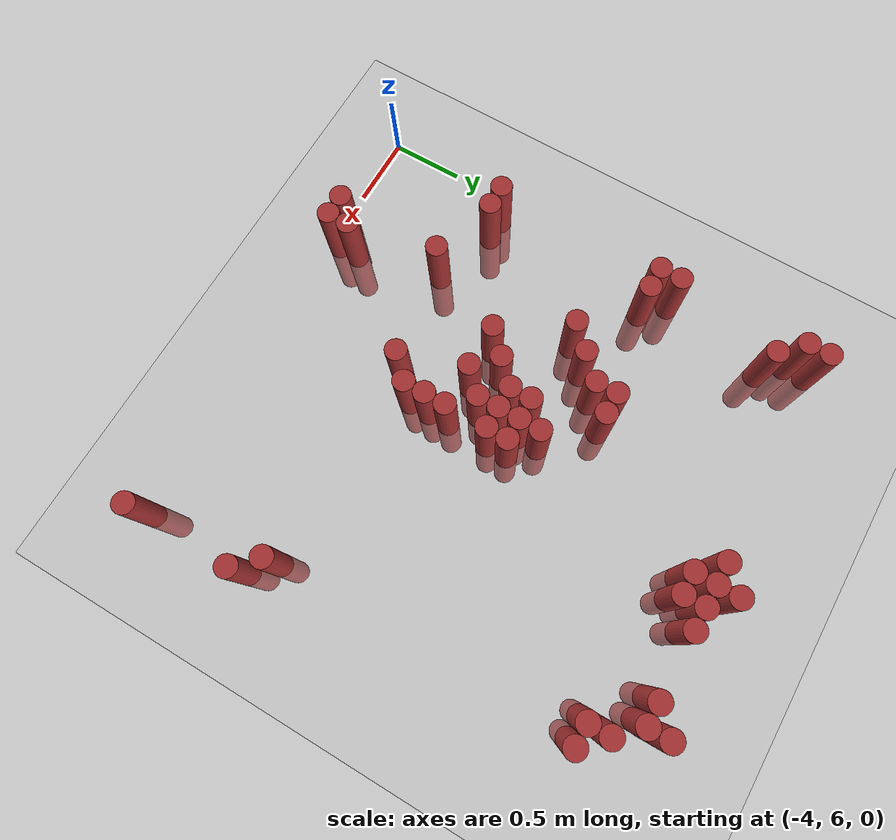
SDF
<sdf version="1.6">
 <world name="default">
  <model name="ground_plane">
   <static>1</static>
   <link name="link">
    <collision name="collision">
     <geometry><plane><normal>0 0 1</normal><size>100 100</size></plane></geometry>
     <surface><friction><ode><mu>100</mu><mu2>50</mu2></ode></friction></surface>
    </collision>
    <visual name="visual">
     <cast_shadows>0</cast_shadows>
     <geometry><plane><normal>0 0 1</normal><size>100 100</size></plane></geometry>
     <material>
      <script><uri>file://media/materials/scripts/gazebo.material</uri><name>Gazebo/Grey</name></script>
     </material>
    </visual>
   </link>
  </model>
  <model name="unit_cylinder_158">
   <static>1</static>
   <pose>-3.825000 6.975000 0.000000 0.000000 0.000000 0.000000</pose>
   <link name="link">
    <inertial>
     <mass>1</mass>
     <inertia><ixx>0.145833</ixx><ixy>0</ixy><ixz>0</ixz><iyy>0.145833</iyy><iyz>0</iyz><izz>0.125</izz></inertia>
    </inertial>
    <collision name="collision">
     <geometry><cylinder><radius>0.075000</radius><length>1</length></cylinder></geometry>
    </collision>
    <visual name="visual">
     <geometry><cylinder><radius>0.075000</radius><length>1</length></cylinder></geometry>
     <material>
      <ambient>0.648000 0.192000 0.192000 1</ambient>
      <diffuse>0.648000 0.192000 0.192000 1</diffuse>
     </material>
     <material>
      <script><name>Gazebo/Grey</name><uri>file://media/materials/scripts/gazebo.material</uri></script>
     </material>
    </visual>
   </link>
  </model>
  <model name="unit_cylinder_159">
   <static>1</static>
   <pose>-3.825000 8.175000 0.000000 0.000000 0.000000 0.000000</pose>
   <link name="link">
    <inertial>
     <mass>1</mass>
     <inertia><ixx>0.145833</ixx><ixy>0</ixy><ixz>0</ixz><iyy>0.145833</iyy><iyz>0</iyz><izz>0.125</izz></inertia>
    </inertial>
    <collision name="collision">
     <geometry><cylinder><radius>0.075000</radius><length>1</length></cylinder></geometry>
    </collision>
    <visual name="visual">
     <geometry><cylinder><radius>0.075000</radius><length>1</length></cylinder></geometry>
     <material>
      <ambient>0.648000 0.192000 0.192000 1</ambient>
      <diffuse>0.648000 0.192000 0.192000 1</diffuse>
     </material>
     <material>
      <script><name>Gazebo/Grey</name><uri>file://media/materials/scripts/gazebo.material</uri></script>
     </material>
    </visual>
   </link>
  </model>
  <model name="unit_cylinder_160">
   <static>1</static>
   <pose>-3.825000 8.325000 0.000000 0.000000 0.000000 0.000000</pose>
   <link name="link">
    <inertial>
     <mass>1</mass>
     <inertia><ixx>0.145833</ixx><ixy>0</ixy><ixz>0</ixz><iyy>0.145833</iyy><iyz>0</iyz><izz>0.125</izz></inertia>
    </inertial>
    <collision name="collision">
     <geometry><cylinder><radius>0.075000</radius><length>1</length></cylinder></geometry>
    </collision>
    <visual name="visual">
     <geometry><cylinder><radius>0.075000</radius><length>1</length></cylinder></geometry>
     <material>
      <ambient>0.648000 0.192000 0.192000 1</ambient>
      <diffuse>0.648000 0.192000 0.192000 1</diffuse>
     </material>
     <material>
      <script><name>Gazebo/Grey</name><uri>file://media/materials/scripts/gazebo.material</uri></script>
     </material>
    </visual>
   </link>
  </model>
  <model name="unit_cylinder_161">
   <static>1</static>
   <pose>-3.825000 9.225000 0.000000 0.000000 0.000000 0.000000</pose>
   <link name="link">
    <inertial>
     <mass>1</mass>
     <inertia><ixx>0.145833</ixx><ixy>0</ixy><ixz>0</ixz><iyy>0.145833</iyy><iyz>0</iyz><izz>0.125</izz></inertia>
    </inertial>
    <collision name="collision">
     <geometry><cylinder><radius>0.075000</radius><length>1</length></cylinder></geometry>
    </collision>
    <visual name="visual">
     <geometry><cylinder><radius>0.075000</radius><length>1</length></cylinder></geometry>
     <material>
      <ambient>0.648000 0.192000 0.192000 1</ambient>
      <diffuse>0.648000 0.192000 0.192000 1</diffuse>
     </material>
     <material>
      <script><name>Gazebo/Grey</name><uri>file://media/materials/scripts/gazebo.material</uri></script>
     </material>
    </visual>
   </link>
  </model>
  <model name="unit_cylinder_162">
   <static>1</static>
   <pose>-3.825000 9.375000 0.000000 0.000000 0.000000 0.000000</pose>
   <link name="link">
    <inertial>
     <mass>1</mass>
     <inertia><ixx>0.145833</ixx><ixy>0</ixy><ixz>0</ixz><iyy>0.145833</iyy><iyz>0</iyz><izz>0.125</izz></inertia>
    </inertial>
    <collision name="collision">
     <geometry><cylinder><radius>0.075000</radius><length>1</length></cylinder></geometry>
    </collision>
    <visual name="visual">
     <geometry><cylinder><radius>0.075000</radius><length>1</length></cylinder></geometry>
     <material>
      <ambient>0.648000 0.192000 0.192000 1</ambient>
      <diffuse>0.648000 0.192000 0.192000 1</diffuse>
     </material>
     <material>
      <script><name>Gazebo/Grey</name><uri>file://media/materials/scripts/gazebo.material</uri></script>
     </material>
    </visual>
   </link>
  </model>
  <model name="unit_cylinder_163">
   <static>1</static>
   <pose>-3.675000 6.975000 0.000000 0.000000 0.000000 0.000000</pose>
   <link name="link">
    <inertial>
     <mass>1</mass>
     <inertia><ixx>0.145833</ixx><ixy>0</ixy><ixz>0</ixz><iyy>0.145833</iyy><iyz>0</iyz><izz>0.125</izz></inertia>
    </inertial>
    <collision name="collision">
     <geometry><cylinder><radius>0.075000</radius><length>1</length></cylinder></geometry>
    </collision>
    <visual name="visual">
     <geometry><cylinder><radius>0.075000</radius><length>1</length></cylinder></geometry>
     <material>
      <ambient>0.648000 0.192000 0.192000 1</ambient>
      <diffuse>0.648000 0.192000 0.192000 1</diffuse>
     </material>
     <material>
      <script><name>Gazebo/Grey</name><uri>file://media/materials/scripts/gazebo.material</uri></script>
     </material>
    </visual>
   </link>
  </model>
  <model name="unit_cylinder_164">
   <static>1</static>
   <pose>-3.675000 8.175000 0.000000 0.000000 0.000000 0.000000</pose>
   <link name="link">
    <inertial>
     <mass>1</mass>
     <inertia><ixx>0.145833</ixx><ixy>0</ixy><ixz>0</ixz><iyy>0.145833</iyy><iyz>0</iyz><izz>0.125</izz></inertia>
    </inertial>
    <collision name="collision">
     <geometry><cylinder><radius>0.075000</radius><length>1</length></cylinder></geometry>
    </collision>
    <visual name="visual">
     <geometry><cylinder><radius>0.075000</radius><length>1</length></cylinder></geometry>
     <material>
      <ambient>0.648000 0.192000 0.192000 1</ambient>
      <diffuse>0.648000 0.192000 0.192000 1</diffuse>
     </material>
     <material>
      <script><name>Gazebo/Grey</name><uri>file://media/materials/scripts/gazebo.material</uri></script>
     </material>
    </visual>
   </link>
  </model>
  <model name="unit_cylinder_165">
   <static>1</static>
   <pose>-3.675000 9.075000 0.000000 0.000000 0.000000 0.000000</pose>
   <link name="link">
    <inertial>
     <mass>1</mass>
     <inertia><ixx>0.145833</ixx><ixy>0</ixy><ixz>0</ixz><iyy>0.145833</iyy><iyz>0</iyz><izz>0.125</izz></inertia>
    </inertial>
    <collision name="collision">
     <geometry><cylinder><radius>0.075000</radius><length>1</length></cylinder></geometry>
    </collision>
    <visual name="visual">
     <geometry><cylinder><radius>0.075000</radius><length>1</length></cylinder></geometry>
     <material>
      <ambient>0.648000 0.192000 0.192000 1</ambient>
      <diffuse>0.648000 0.192000 0.192000 1</diffuse>
     </material>
     <material>
      <script><name>Gazebo/Grey</name><uri>file://media/materials/scripts/gazebo.material</uri></script>
     </material>
    </visual>
   </link>
  </model>
  <model name="unit_cylinder_172">
   <static>1</static>
   <pose>-3.225000 6.075000 0.000000 0.000000 0.000000 0.000000</pose>
   <link name="link">
    <inertial>
     <mass>1</mass>
     <inertia><ixx>0.145833</ixx><ixy>0</ixy><ixz>0</ixz><iyy>0.145833</iyy><iyz>0</iyz><izz>0.125</izz></inertia>
    </inertial>
    <collision name="collision">
     <geometry><cylinder><radius>0.075000</radius><length>1</length></cylinder></geometry>
    </collision>
    <visual name="visual">
     <geometry><cylinder><radius>0.075000</radius><length>1</length></cylinder></geometry>
     <material>
      <ambient>0.648000 0.192000 0.192000 1</ambient>
      <diffuse>0.648000 0.192000 0.192000 1</diffuse>
     </material>
     <material>
      <script><name>Gazebo/Grey</name><uri>file://media/materials/scripts/gazebo.material</uri></script>
     </material>
    </visual>
   </link>
  </model>
  <model name="unit_cylinder_173">
   <static>1</static>
   <pose>-3.225000 6.825000 0.000000 0.000000 0.000000 0.000000</pose>
   <link name="link">
    <inertial>
     <mass>1</mass>
     <inertia><ixx>0.145833</ixx><ixy>0</ixy><ixz>0</ixz><iyy>0.145833</iyy><iyz>0</iyz><izz>0.125</izz></inertia>
    </inertial>
    <collision name="collision">
     <geometry><cylinder><radius>0.075000</radius><length>1</length></cylinder></geometry>
    </collision>
    <visual name="visual">
     <geometry><cylinder><radius>0.075000</radius><length>1</length></cylinder></geometry>
     <material>
      <ambient>0.648000 0.192000 0.192000 1</ambient>
      <diffuse>0.648000 0.192000 0.192000 1</diffuse>
     </material>
     <material>
      <script><name>Gazebo/Grey</name><uri>file://media/materials/scripts/gazebo.material</uri></script>
     </material>
    </visual>
   </link>
  </model>
  <model name="unit_cylinder_174">
   <static>1</static>
   <pose>-3.225000 7.875000 0.000000 0.000000 0.000000 0.000000</pose>
   <link name="link">
    <inertial>
     <mass>1</mass>
     <inertia><ixx>0.145833</ixx><ixy>0</ixy><ixz>0</ixz><iyy>0.145833</iyy><iyz>0</iyz><izz>0.125</izz></inertia>
    </inertial>
    <collision name="collision">
     <geometry><cylinder><radius>0.075000</radius><length>1</length></cylinder></geometry>
    </collision>
    <visual name="visual">
     <geometry><cylinder><radius>0.075000</radius><length>1</length></cylinder></geometry>
     <material>
      <ambient>0.648000 0.192000 0.192000 1</ambient>
      <diffuse>0.648000 0.192000 0.192000 1</diffuse>
     </material>
     <material>
      <script><name>Gazebo/Grey</name><uri>file://media/materials/scripts/gazebo.material</uri></script>
     </material>
    </visual>
   </link>
  </model>
  <model name="unit_cylinder_178">
   <static>1</static>
   <pose>-3.075000 6.075000 0.000000 0.000000 0.000000 0.000000</pose>
   <link name="link">
    <inertial>
     <mass>1</mass>
     <inertia><ixx>0.145833</ixx><ixy>0</ixy><ixz>0</ixz><iyy>0.145833</iyy><iyz>0</iyz><izz>0.125</izz></inertia>
    </inertial>
    <collision name="collision">
     <geometry><cylinder><radius>0.075000</radius><length>1</length></cylinder></geometry>
    </collision>
    <visual name="visual">
     <geometry><cylinder><radius>0.075000</radius><length>1</length></cylinder></geometry>
     <material>
      <ambient>0.648000 0.192000 0.192000 1</ambient>
      <diffuse>0.648000 0.192000 0.192000 1</diffuse>
     </material>
     <material>
      <script><name>Gazebo/Grey</name><uri>file://media/materials/scripts/gazebo.material</uri></script>
     </material>
    </visual>
   </link>
  </model>
  <model name="unit_cylinder_179">
   <static>1</static>
   <pose>-3.075000 6.225000 0.000000 0.000000 0.000000 0.000000</pose>
   <link name="link">
    <inertial>
     <mass>1</mass>
     <inertia><ixx>0.145833</ixx><ixy>0</ixy><ixz>0</ixz><iyy>0.145833</iyy><iyz>0</iyz><izz>0.125</izz></inertia>
    </inertial>
    <collision name="collision">
     <geometry><cylinder><radius>0.075000</radius><length>1</length></cylinder></geometry>
    </collision>
    <visual name="visual">
     <geometry><cylinder><radius>0.075000</radius><length>1</length></cylinder></geometry>
     <material>
      <ambient>0.648000 0.192000 0.192000 1</ambient>
      <diffuse>0.648000 0.192000 0.192000 1</diffuse>
     </material>
     <material>
      <script><name>Gazebo/Grey</name><uri>file://media/materials/scripts/gazebo.material</uri></script>
     </material>
    </visual>
   </link>
  </model>
  <model name="unit_cylinder_180">
   <static>1</static>
   <pose>-3.075000 8.025000 0.000000 0.000000 0.000000 0.000000</pose>
   <link name="link">
    <inertial>
     <mass>1</mass>
     <inertia><ixx>0.145833</ixx><ixy>0</ixy><ixz>0</ixz><iyy>0.145833</iyy><iyz>0</iyz><izz>0.125</izz></inertia>
    </inertial>
    <collision name="collision">
     <geometry><cylinder><radius>0.075000</radius><length>1</length></cylinder></geometry>
    </collision>
    <visual name="visual">
     <geometry><cylinder><radius>0.075000</radius><length>1</length></cylinder></geometry>
     <material>
      <ambient>0.648000 0.192000 0.192000 1</ambient>
      <diffuse>0.648000 0.192000 0.192000 1</diffuse>
     </material>
     <material>
      <script><name>Gazebo/Grey</name><uri>file://media/materials/scripts/gazebo.material</uri></script>
     </material>
    </visual>
   </link>
  </model>
  <model name="unit_cylinder_183">
   <static>1</static>
   <pose>-2.925000 7.425000 0.000000 0.000000 0.000000 0.000000</pose>
   <link name="link">
    <inertial>
     <mass>1</mass>
     <inertia><ixx>0.145833</ixx><ixy>0</ixy><ixz>0</ixz><iyy>0.145833</iyy><iyz>0</iyz><izz>0.125</izz></inertia>
    </inertial>
    <collision name="collision">
     <geometry><cylinder><radius>0.075000</radius><length>1</length></cylinder></geometry>
    </collision>
    <visual name="visual">
     <geometry><cylinder><radius>0.075000</radius><length>1</length></cylinder></geometry>
     <material>
      <ambient>0.648000 0.192000 0.192000 1</ambient>
      <diffuse>0.648000 0.192000 0.192000 1</diffuse>
     </material>
     <material>
      <script><name>Gazebo/Grey</name><uri>file://media/materials/scripts/gazebo.material</uri></script>
     </material>
    </visual>
   </link>
  </model>
  <model name="unit_cylinder_184">
   <static>1</static>
   <pose>-2.925000 8.175000 0.000000 0.000000 0.000000 0.000000</pose>
   <link name="link">
    <inertial>
     <mass>1</mass>
     <inertia><ixx>0.145833</ixx><ixy>0</ixy><ixz>0</ixz><iyy>0.145833</iyy><iyz>0</iyz><izz>0.125</izz></inertia>
    </inertial>
    <collision name="collision">
     <geometry><cylinder><radius>0.075000</radius><length>1</length></cylinder></geometry>
    </collision>
    <visual name="visual">
     <geometry><cylinder><radius>0.075000</radius><length>1</length></cylinder></geometry>
     <material>
      <ambient>0.648000 0.192000 0.192000 1</ambient>
      <diffuse>0.648000 0.192000 0.192000 1</diffuse>
     </material>
     <material>
      <script><name>Gazebo/Grey</name><uri>file://media/materials/scripts/gazebo.material</uri></script>
     </material>
    </visual>
   </link>
  </model>
  <model name="unit_cylinder_185">
   <static>1</static>
   <pose>-2.925000 8.325000 0.000000 0.000000 0.000000 0.000000</pose>
   <link name="link">
    <inertial>
     <mass>1</mass>
     <inertia><ixx>0.145833</ixx><ixy>0</ixy><ixz>0</ixz><iyy>0.145833</iyy><iyz>0</iyz><izz>0.125</izz></inertia>
    </inertial>
    <collision name="collision">
     <geometry><cylinder><radius>0.075000</radius><length>1</length></cylinder></geometry>
    </collision>
    <visual name="visual">
     <geometry><cylinder><radius>0.075000</radius><length>1</length></cylinder></geometry>
     <material>
      <ambient>0.648000 0.192000 0.192000 1</ambient>
      <diffuse>0.648000 0.192000 0.192000 1</diffuse>
     </material>
     <material>
      <script><name>Gazebo/Grey</name><uri>file://media/materials/scripts/gazebo.material</uri></script>
     </material>
    </visual>
   </link>
  </model>
  <model name="unit_cylinder_188">
   <static>1</static>
   <pose>-2.775000 7.575000 0.000000 0.000000 0.000000 0.000000</pose>
   <link name="link">
    <inertial>
     <mass>1</mass>
     <inertia><ixx>0.145833</ixx><ixy>0</ixy><ixz>0</ixz><iyy>0.145833</iyy><iyz>0</iyz><izz>0.125</izz></inertia>
    </inertial>
    <collision name="collision">
     <geometry><cylinder><radius>0.075000</radius><length>1</length></cylinder></geometry>
    </collision>
    <visual name="visual">
     <geometry><cylinder><radius>0.075000</radius><length>1</length></cylinder></geometry>
     <material>
      <ambient>0.648000 0.192000 0.192000 1</ambient>
      <diffuse>0.648000 0.192000 0.192000 1</diffuse>
     </material>
     <material>
      <script><name>Gazebo/Grey</name><uri>file://media/materials/scripts/gazebo.material</uri></script>
     </material>
    </visual>
   </link>
  </model>
  <model name="unit_cylinder_189">
   <static>1</static>
   <pose>-2.775000 8.325000 0.000000 0.000000 0.000000 0.000000</pose>
   <link name="link">
    <inertial>
     <mass>1</mass>
     <inertia><ixx>0.145833</ixx><ixy>0</ixy><ixz>0</ixz><iyy>0.145833</iyy><iyz>0</iyz><izz>0.125</izz></inertia>
    </inertial>
    <collision name="collision">
     <geometry><cylinder><radius>0.075000</radius><length>1</length></cylinder></geometry>
    </collision>
    <visual name="visual">
     <geometry><cylinder><radius>0.075000</radius><length>1</length></cylinder></geometry>
     <material>
      <ambient>0.648000 0.192000 0.192000 1</ambient>
      <diffuse>0.648000 0.192000 0.192000 1</diffuse>
     </material>
     <material>
      <script><name>Gazebo/Grey</name><uri>file://media/materials/scripts/gazebo.material</uri></script>
     </material>
    </visual>
   </link>
  </model>
  <model name="unit_cylinder_193">
   <static>1</static>
   <pose>-2.625000 7.425000 0.000000 0.000000 0.000000 0.000000</pose>
   <link name="link">
    <inertial>
     <mass>1</mass>
     <inertia><ixx>0.145833</ixx><ixy>0</ixy><ixz>0</ixz><iyy>0.145833</iyy><iyz>0</iyz><izz>0.125</izz></inertia>
    </inertial>
    <collision name="collision">
     <geometry><cylinder><radius>0.075000</radius><length>1</length></cylinder></geometry>
    </collision>
    <visual name="visual">
     <geometry><cylinder><radius>0.075000</radius><length>1</length></cylinder></geometry>
     <material>
      <ambient>0.648000 0.192000 0.192000 1</ambient>
      <diffuse>0.648000 0.192000 0.192000 1</diffuse>
     </material>
     <material>
      <script><name>Gazebo/Grey</name><uri>file://media/materials/scripts/gazebo.material</uri></script>
     </material>
    </visual>
   </link>
  </model>
  <model name="unit_cylinder_194">
   <static>1</static>
   <pose>-2.625000 7.725000 0.000000 0.000000 0.000000 0.000000</pose>
   <link name="link">
    <inertial>
     <mass>1</mass>
     <inertia><ixx>0.145833</ixx><ixy>0</ixy><ixz>0</ixz><iyy>0.145833</iyy><iyz>0</iyz><izz>0.125</izz></inertia>
    </inertial>
    <collision name="collision">
     <geometry><cylinder><radius>0.075000</radius><length>1</length></cylinder></geometry>
    </collision>
    <visual name="visual">
     <geometry><cylinder><radius>0.075000</radius><length>1</length></cylinder></geometry>
     <material>
      <ambient>0.648000 0.192000 0.192000 1</ambient>
      <diffuse>0.648000 0.192000 0.192000 1</diffuse>
     </material>
     <material>
      <script><name>Gazebo/Grey</name><uri>file://media/materials/scripts/gazebo.material</uri></script>
     </material>
    </visual>
   </link>
  </model>
  <model name="unit_cylinder_195">
   <static>1</static>
   <pose>-2.625000 7.875000 0.000000 0.000000 0.000000 0.000000</pose>
   <link name="link">
    <inertial>
     <mass>1</mass>
     <inertia><ixx>0.145833</ixx><ixy>0</ixy><ixz>0</ixz><iyy>0.145833</iyy><iyz>0</iyz><izz>0.125</izz></inertia>
    </inertial>
    <collision name="collision">
     <geometry><cylinder><radius>0.075000</radius><length>1</length></cylinder></geometry>
    </collision>
    <visual name="visual">
     <geometry><cylinder><radius>0.075000</radius><length>1</length></cylinder></geometry>
     <material>
      <ambient>0.648000 0.192000 0.192000 1</ambient>
      <diffuse>0.648000 0.192000 0.192000 1</diffuse>
     </material>
     <material>
      <script><name>Gazebo/Grey</name><uri>file://media/materials/scripts/gazebo.material</uri></script>
     </material>
    </visual>
   </link>
  </model>
  <model name="unit_cylinder_199">
   <static>1</static>
   <pose>-2.475000 6.975000 0.000000 0.000000 0.000000 0.000000</pose>
   <link name="link">
    <inertial>
     <mass>1</mass>
     <inertia><ixx>0.145833</ixx><ixy>0</ixy><ixz>0</ixz><iyy>0.145833</iyy><iyz>0</iyz><izz>0.125</izz></inertia>
    </inertial>
    <collision name="collision">
     <geometry><cylinder><radius>0.075000</radius><length>1</length></cylinder></geometry>
    </collision>
    <visual name="visual">
     <geometry><cylinder><radius>0.075000</radius><length>1</length></cylinder></geometry>
     <material>
      <ambient>0.648000 0.192000 0.192000 1</ambient>
      <diffuse>0.648000 0.192000 0.192000 1</diffuse>
     </material>
     <material>
      <script><name>Gazebo/Grey</name><uri>file://media/materials/scripts/gazebo.material</uri></script>
     </material>
    </visual>
   </link>
  </model>
  <model name="unit_cylinder_200">
   <static>1</static>
   <pose>-2.475000 7.575000 0.000000 0.000000 0.000000 0.000000</pose>
   <link name="link">
    <inertial>
     <mass>1</mass>
     <inertia><ixx>0.145833</ixx><ixy>0</ixy><ixz>0</ixz><iyy>0.145833</iyy><iyz>0</iyz><izz>0.125</izz></inertia>
    </inertial>
    <collision name="collision">
     <geometry><cylinder><radius>0.075000</radius><length>1</length></cylinder></geometry>
    </collision>
    <visual name="visual">
     <geometry><cylinder><radius>0.075000</radius><length>1</length></cylinder></geometry>
     <material>
      <ambient>0.648000 0.192000 0.192000 1</ambient>
      <diffuse>0.648000 0.192000 0.192000 1</diffuse>
     </material>
     <material>
      <script><name>Gazebo/Grey</name><uri>file://media/materials/scripts/gazebo.material</uri></script>
     </material>
    </visual>
   </link>
  </model>
  <model name="unit_cylinder_201">
   <static>1</static>
   <pose>-2.475000 7.725000 0.000000 0.000000 0.000000 0.000000</pose>
   <link name="link">
    <inertial>
     <mass>1</mass>
     <inertia><ixx>0.145833</ixx><ixy>0</ixy><ixz>0</ixz><iyy>0.145833</iyy><iyz>0</iyz><izz>0.125</izz></inertia>
    </inertial>
    <collision name="collision">
     <geometry><cylinder><radius>0.075000</radius><length>1</length></cylinder></geometry>
    </collision>
    <visual name="visual">
     <geometry><cylinder><radius>0.075000</radius><length>1</length></cylinder></geometry>
     <material>
      <ambient>0.648000 0.192000 0.192000 1</ambient>
      <diffuse>0.648000 0.192000 0.192000 1</diffuse>
     </material>
     <material>
      <script><name>Gazebo/Grey</name><uri>file://media/materials/scripts/gazebo.material</uri></script>
     </material>
    </visual>
   </link>
  </model>
  <model name="unit_cylinder_202">
   <static>1</static>
   <pose>-2.475000 7.875000 0.000000 0.000000 0.000000 0.000000</pose>
   <link name="link">
    <inertial>
     <mass>1</mass>
     <inertia><ixx>0.145833</ixx><ixy>0</ixy><ixz>0</ixz><iyy>0.145833</iyy><iyz>0</iyz><izz>0.125</izz></inertia>
    </inertial>
    <collision name="collision">
     <geometry><cylinder><radius>0.075000</radius><length>1</length></cylinder></geometry>
    </collision>
    <visual name="visual">
     <geometry><cylinder><radius>0.075000</radius><length>1</length></cylinder></geometry>
     <material>
      <ambient>0.648000 0.192000 0.192000 1</ambient>
      <diffuse>0.648000 0.192000 0.192000 1</diffuse>
     </material>
     <material>
      <script><name>Gazebo/Grey</name><uri>file://media/materials/scripts/gazebo.material</uri></script>
     </material>
    </visual>
   </link>
  </model>
  <model name="unit_cylinder_203">
   <static>1</static>
   <pose>-2.475000 8.025000 0.000000 0.000000 0.000000 0.000000</pose>
   <link name="link">
    <inertial>
     <mass>1</mass>
     <inertia><ixx>0.145833</ixx><ixy>0</ixy><ixz>0</ixz><iyy>0.145833</iyy><iyz>0</iyz><izz>0.125</izz></inertia>
    </inertial>
    <collision name="collision">
     <geometry><cylinder><radius>0.075000</radius><length>1</length></cylinder></geometry>
    </collision>
    <visual name="visual">
     <geometry><cylinder><radius>0.075000</radius><length>1</length></cylinder></geometry>
     <material>
      <ambient>0.648000 0.192000 0.192000 1</ambient>
      <diffuse>0.648000 0.192000 0.192000 1</diffuse>
     </material>
     <material>
      <script><name>Gazebo/Grey</name><uri>file://media/materials/scripts/gazebo.material</uri></script>
     </material>
    </visual>
   </link>
  </model>
  <model name="unit_cylinder_206">
   <static>1</static>
   <pose>-2.325000 7.125000 0.000000 0.000000 0.000000 0.000000</pose>
   <link name="link">
    <inertial>
     <mass>1</mass>
     <inertia><ixx>0.145833</ixx><ixy>0</ixy><ixz>0</ixz><iyy>0.145833</iyy><iyz>0</iyz><izz>0.125</izz></inertia>
    </inertial>
    <collision name="collision">
     <geometry><cylinder><radius>0.075000</radius><length>1</length></cylinder></geometry>
    </collision>
    <visual name="visual">
     <geometry><cylinder><radius>0.075000</radius><length>1</length></cylinder></geometry>
     <material>
      <ambient>0.648000 0.192000 0.192000 1</ambient>
      <diffuse>0.648000 0.192000 0.192000 1</diffuse>
     </material>
     <material>
      <script><name>Gazebo/Grey</name><uri>file://media/materials/scripts/gazebo.material</uri></script>
     </material>
    </visual>
   </link>
  </model>
  <model name="unit_cylinder_207">
   <static>1</static>
   <pose>-2.325000 7.275000 0.000000 0.000000 0.000000 0.000000</pose>
   <link name="link">
    <inertial>
     <mass>1</mass>
     <inertia><ixx>0.145833</ixx><ixy>0</ixy><ixz>0</ixz><iyy>0.145833</iyy><iyz>0</iyz><izz>0.125</izz></inertia>
    </inertial>
    <collision name="collision">
     <geometry><cylinder><radius>0.075000</radius><length>1</length></cylinder></geometry>
    </collision>
    <visual name="visual">
     <geometry><cylinder><radius>0.075000</radius><length>1</length></cylinder></geometry>
     <material>
      <ambient>0.648000 0.192000 0.192000 1</ambient>
      <diffuse>0.648000 0.192000 0.192000 1</diffuse>
     </material>
     <material>
      <script><name>Gazebo/Grey</name><uri>file://media/materials/scripts/gazebo.material</uri></script>
     </material>
    </visual>
   </link>
  </model>
  <model name="unit_cylinder_208">
   <static>1</static>
   <pose>-2.325000 7.425000 0.000000 0.000000 0.000000 0.000000</pose>
   <link name="link">
    <inertial>
     <mass>1</mass>
     <inertia><ixx>0.145833</ixx><ixy>0</ixy><ixz>0</ixz><iyy>0.145833</iyy><iyz>0</iyz><izz>0.125</izz></inertia>
    </inertial>
    <collision name="collision">
     <geometry><cylinder><radius>0.075000</radius><length>1</length></cylinder></geometry>
    </collision>
    <visual name="visual">
     <geometry><cylinder><radius>0.075000</radius><length>1</length></cylinder></geometry>
     <material>
      <ambient>0.648000 0.192000 0.192000 1</ambient>
      <diffuse>0.648000 0.192000 0.192000 1</diffuse>
     </material>
     <material>
      <script><name>Gazebo/Grey</name><uri>file://media/materials/scripts/gazebo.material</uri></script>
     </material>
    </visual>
   </link>
  </model>
  <model name="unit_cylinder_209">
   <static>1</static>
   <pose>-2.325000 7.725000 0.000000 0.000000 0.000000 0.000000</pose>
   <link name="link">
    <inertial>
     <mass>1</mass>
     <inertia><ixx>0.145833</ixx><ixy>0</ixy><ixz>0</ixz><iyy>0.145833</iyy><iyz>0</iyz><izz>0.125</izz></inertia>
    </inertial>
    <collision name="collision">
     <geometry><cylinder><radius>0.075000</radius><length>1</length></cylinder></geometry>
    </collision>
    <visual name="visual">
     <geometry><cylinder><radius>0.075000</radius><length>1</length></cylinder></geometry>
     <material>
      <ambient>0.648000 0.192000 0.192000 1</ambient>
      <diffuse>0.648000 0.192000 0.192000 1</diffuse>
     </material>
     <material>
      <script><name>Gazebo/Grey</name><uri>file://media/materials/scripts/gazebo.material</uri></script>
     </material>
    </visual>
   </link>
  </model>
  <model name="unit_cylinder_210">
   <static>1</static>
   <pose>-2.325000 7.875000 0.000000 0.000000 0.000000 0.000000</pose>
   <link name="link">
    <inertial>
     <mass>1</mass>
     <inertia><ixx>0.145833</ixx><ixy>0</ixy><ixz>0</ixz><iyy>0.145833</iyy><iyz>0</iyz><izz>0.125</izz></inertia>
    </inertial>
    <collision name="collision">
     <geometry><cylinder><radius>0.075000</radius><length>1</length></cylinder></geometry>
    </collision>
    <visual name="visual">
     <geometry><cylinder><radius>0.075000</radius><length>1</length></cylinder></geometry>
     <material>
      <ambient>0.648000 0.192000 0.192000 1</ambient>
      <diffuse>0.648000 0.192000 0.192000 1</diffuse>
     </material>
     <material>
      <script><name>Gazebo/Grey</name><uri>file://media/materials/scripts/gazebo.material</uri></script>
     </material>
    </visual>
   </link>
  </model>
  <model name="unit_cylinder_211">
   <static>1</static>
   <pose>-2.325000 9.375000 0.000000 0.000000 0.000000 0.000000</pose>
   <link name="link">
    <inertial>
     <mass>1</mass>
     <inertia><ixx>0.145833</ixx><ixy>0</ixy><ixz>0</ixz><iyy>0.145833</iyy><iyz>0</iyz><izz>0.125</izz></inertia>
    </inertial>
    <collision name="collision">
     <geometry><cylinder><radius>0.075000</radius><length>1</length></cylinder></geometry>
    </collision>
    <visual name="visual">
     <geometry><cylinder><radius>0.075000</radius><length>1</length></cylinder></geometry>
     <material>
      <ambient>0.648000 0.192000 0.192000 1</ambient>
      <diffuse>0.648000 0.192000 0.192000 1</diffuse>
     </material>
     <material>
      <script><name>Gazebo/Grey</name><uri>file://media/materials/scripts/gazebo.material</uri></script>
     </material>
    </visual>
   </link>
  </model>
  <model name="unit_cylinder_212">
   <static>1</static>
   <pose>-2.175000 9.225000 0.000000 0.000000 0.000000 0.000000</pose>
   <link name="link">
    <inertial>
     <mass>1</mass>
     <inertia><ixx>0.145833</ixx><ixy>0</ixy><ixz>0</ixz><iyy>0.145833</iyy><iyz>0</iyz><izz>0.125</izz></inertia>
    </inertial>
    <collision name="collision">
     <geometry><cylinder><radius>0.075000</radius><length>1</length></cylinder></geometry>
    </collision>
    <visual name="visual">
     <geometry><cylinder><radius>0.075000</radius><length>1</length></cylinder></geometry>
     <material>
      <ambient>0.648000 0.192000 0.192000 1</ambient>
      <diffuse>0.648000 0.192000 0.192000 1</diffuse>
     </material>
     <material>
      <script><name>Gazebo/Grey</name><uri>file://media/materials/scripts/gazebo.material</uri></script>
     </material>
    </visual>
   </link>
  </model>
  <model name="unit_cylinder_213">
   <static>1</static>
   <pose>-2.175000 9.375000 0.000000 0.000000 0.000000 0.000000</pose>
   <link name="link">
    <inertial>
     <mass>1</mass>
     <inertia><ixx>0.145833</ixx><ixy>0</ixy><ixz>0</ixz><iyy>0.145833</iyy><iyz>0</iyz><izz>0.125</izz></inertia>
    </inertial>
    <collision name="collision">
     <geometry><cylinder><radius>0.075000</radius><length>1</length></cylinder></geometry>
    </collision>
    <visual name="visual">
     <geometry><cylinder><radius>0.075000</radius><length>1</length></cylinder></geometry>
     <material>
      <ambient>0.648000 0.192000 0.192000 1</ambient>
      <diffuse>0.648000 0.192000 0.192000 1</diffuse>
     </material>
     <material>
      <script><name>Gazebo/Grey</name><uri>file://media/materials/scripts/gazebo.material</uri></script>
     </material>
    </visual>
   </link>
  </model>
  <model name="unit_cylinder_214">
   <static>1</static>
   <pose>-2.175000 9.525000 0.000000 0.000000 0.000000 0.000000</pose>
   <link name="link">
    <inertial>
     <mass>1</mass>
     <inertia><ixx>0.145833</ixx><ixy>0</ixy><ixz>0</ixz><iyy>0.145833</iyy><iyz>0</iyz><izz>0.125</izz></inertia>
    </inertial>
    <collision name="collision">
     <geometry><cylinder><radius>0.075000</radius><length>1</length></cylinder></geometry>
    </collision>
    <visual name="visual">
     <geometry><cylinder><radius>0.075000</radius><length>1</length></cylinder></geometry>
     <material>
      <ambient>0.648000 0.192000 0.192000 1</ambient>
      <diffuse>0.648000 0.192000 0.192000 1</diffuse>
     </material>
     <material>
      <script><name>Gazebo/Grey</name><uri>file://media/materials/scripts/gazebo.material</uri></script>
     </material>
    </visual>
   </link>
  </model>
  <model name="unit_cylinder_215">
   <static>1</static>
   <pose>-2.025000 9.225000 0.000000 0.000000 0.000000 0.000000</pose>
   <link name="link">
    <inertial>
     <mass>1</mass>
     <inertia><ixx>0.145833</ixx><ixy>0</ixy><ixz>0</ixz><iyy>0.145833</iyy><iyz>0</iyz><izz>0.125</izz></inertia>
    </inertial>
    <collision name="collision">
     <geometry><cylinder><radius>0.075000</radius><length>1</length></cylinder></geometry>
    </collision>
    <visual name="visual">
     <geometry><cylinder><radius>0.075000</radius><length>1</length></cylinder></geometry>
     <material>
      <ambient>0.648000 0.192000 0.192000 1</ambient>
      <diffuse>0.648000 0.192000 0.192000 1</diffuse>
     </material>
     <material>
      <script><name>Gazebo/Grey</name><uri>file://media/materials/scripts/gazebo.material</uri></script>
     </material>
    </visual>
   </link>
  </model>
  <model name="unit_cylinder_216">
   <static>1</static>
   <pose>-2.025000 9.375000 0.000000 0.000000 0.000000 0.000000</pose>
   <link name="link">
    <inertial>
     <mass>1</mass>
     <inertia><ixx>0.145833</ixx><ixy>0</ixy><ixz>0</ixz><iyy>0.145833</iyy><iyz>0</iyz><izz>0.125</izz></inertia>
    </inertial>
    <collision name="collision">
     <geometry><cylinder><radius>0.075000</radius><length>1</length></cylinder></geometry>
    </collision>
    <visual name="visual">
     <geometry><cylinder><radius>0.075000</radius><length>1</length></cylinder></geometry>
     <material>
      <ambient>0.648000 0.192000 0.192000 1</ambient>
      <diffuse>0.648000 0.192000 0.192000 1</diffuse>
     </material>
     <material>
      <script><name>Gazebo/Grey</name><uri>file://media/materials/scripts/gazebo.material</uri></script>
     </material>
    </visual>
   </link>
  </model>
  <model name="unit_cylinder_217">
   <static>1</static>
   <pose>-1.875000 9.375000 0.000000 0.000000 0.000000 0.000000</pose>
   <link name="link">
    <inertial>
     <mass>1</mass>
     <inertia><ixx>0.145833</ixx><ixy>0</ixy><ixz>0</ixz><iyy>0.145833</iyy><iyz>0</iyz><izz>0.125</izz></inertia>
    </inertial>
    <collision name="collision">
     <geometry><cylinder><radius>0.075000</radius><length>1</length></cylinder></geometry>
    </collision>
    <visual name="visual">
     <geometry><cylinder><radius>0.075000</radius><length>1</length></cylinder></geometry>
     <material>
      <ambient>0.648000 0.192000 0.192000 1</ambient>
      <diffuse>0.648000 0.192000 0.192000 1</diffuse>
     </material>
     <material>
      <script><name>Gazebo/Grey</name><uri>file://media/materials/scripts/gazebo.material</uri></script>
     </material>
    </visual>
   </link>
  </model>
  <model name="unit_cylinder_218">
   <static>1</static>
   <pose>-1.425000 9.375000 0.000000 0.000000 0.000000 0.000000</pose>
   <link name="link">
    <inertial>
     <mass>1</mass>
     <inertia><ixx>0.145833</ixx><ixy>0</ixy><ixz>0</ixz><iyy>0.145833</iyy><iyz>0</iyz><izz>0.125</izz></inertia>
    </inertial>
    <collision name="collision">
     <geometry><cylinder><radius>0.075000</radius><length>1</length></cylinder></geometry>
    </collision>
    <visual name="visual">
     <geometry><cylinder><radius>0.075000</radius><length>1</length></cylinder></geometry>
     <material>
      <ambient>0.648000 0.192000 0.192000 1</ambient>
      <diffuse>0.648000 0.192000 0.192000 1</diffuse>
     </material>
     <material>
      <script><name>Gazebo/Grey</name><uri>file://media/materials/scripts/gazebo.material</uri></script>
     </material>
    </visual>
   </link>
  </model>
  <model name="unit_cylinder_219">
   <static>1</static>
   <pose>-1.275000 9.375000 0.000000 0.000000 0.000000 0.000000</pose>
   <link name="link">
    <inertial>
     <mass>1</mass>
     <inertia><ixx>0.145833</ixx><ixy>0</ixy><ixz>0</ixz><iyy>0.145833</iyy><iyz>0</iyz><izz>0.125</izz></inertia>
    </inertial>
    <collision name="collision">
     <geometry><cylinder><radius>0.075000</radius><length>1</length></cylinder></geometry>
    </collision>
    <visual name="visual">
     <geometry><cylinder><radius>0.075000</radius><length>1</length></cylinder></geometry>
     <material>
      <ambient>0.648000 0.192000 0.192000 1</ambient>
      <diffuse>0.648000 0.192000 0.192000 1</diffuse>
     </material>
     <material>
      <script><name>Gazebo/Grey</name><uri>file://media/materials/scripts/gazebo.material</uri></script>
     </material>
    </visual>
   </link>
  </model>
  <model name="unit_cylinder_220">
   <static>1</static>
   <pose>-1.275000 9.525000 0.000000 0.000000 0.000000 0.000000</pose>
   <link name="link">
    <inertial>
     <mass>1</mass>
     <inertia><ixx>0.145833</ixx><ixy>0</ixy><ixz>0</ixz><iyy>0.145833</iyy><iyz>0</iyz><izz>0.125</izz></inertia>
    </inertial>
    <collision name="collision">
     <geometry><cylinder><radius>0.075000</radius><length>1</length></cylinder></geometry>
    </collision>
    <visual name="visual">
     <geometry><cylinder><radius>0.075000</radius><length>1</length></cylinder></geometry>
     <material>
      <ambient>0.648000 0.192000 0.192000 1</ambient>
      <diffuse>0.648000 0.192000 0.192000 1</diffuse>
     </material>
     <material>
      <script><name>Gazebo/Grey</name><uri>file://media/materials/scripts/gazebo.material</uri></script>
     </material>
    </visual>
   </link>
  </model>
  <model name="unit_cylinder_221">
   <static>1</static>
   <pose>-1.125000 9.075000 0.000000 0.000000 0.000000 0.000000</pose>
   <link name="link">
    <inertial>
     <mass>1</mass>
     <inertia><ixx>0.145833</ixx><ixy>0</ixy><ixz>0</ixz><iyy>0.145833</iyy><iyz>0</iyz><izz>0.125</izz></inertia>
    </inertial>
    <collision name="collision">
     <geometry><cylinder><radius>0.075000</radius><length>1</length></cylinder></geometry>
    </collision>
    <visual name="visual">
     <geometry><cylinder><radius>0.075000</radius><length>1</length></cylinder></geometry>
     <material>
      <ambient>0.648000 0.192000 0.192000 1</ambient>
      <diffuse>0.648000 0.192000 0.192000 1</diffuse>
     </material>
     <material>
      <script><name>Gazebo/Grey</name><uri>file://media/materials/scripts/gazebo.material</uri></script>
     </material>
    </visual>
   </link>
  </model>
  <model name="unit_cylinder_222">
   <static>1</static>
   <pose>-1.125000 9.225000 0.000000 0.000000 0.000000 0.000000</pose>
   <link name="link">
    <inertial>
     <mass>1</mass>
     <inertia><ixx>0.145833</ixx><ixy>0</ixy><ixz>0</ixz><iyy>0.145833</iyy><iyz>0</iyz><izz>0.125</izz></inertia>
    </inertial>
    <collision name="collision">
     <geometry><cylinder><radius>0.075000</radius><length>1</length></cylinder></geometry>
    </collision>
    <visual name="visual">
     <geometry><cylinder><radius>0.075000</radius><length>1</length></cylinder></geometry>
     <material>
      <ambient>0.648000 0.192000 0.192000 1</ambient>
      <diffuse>0.648000 0.192000 0.192000 1</diffuse>
     </material>
     <material>
      <script><name>Gazebo/Grey</name><uri>file://media/materials/scripts/gazebo.material</uri></script>
     </material>
    </visual>
   </link>
  </model>
  <model name="unit_cylinder_224">
   <static>1</static>
   <pose>-0.975000 6.975000 0.000000 0.000000 0.000000 0.000000</pose>
   <link name="link">
    <inertial>
     <mass>1</mass>
     <inertia><ixx>0.145833</ixx><ixy>0</ixy><ixz>0</ixz><iyy>0.145833</iyy><iyz>0</iyz><izz>0.125</izz></inertia>
    </inertial>
    <collision name="collision">
     <geometry><cylinder><radius>0.075000</radius><length>1</length></cylinder></geometry>
    </collision>
    <visual name="visual">
     <geometry><cylinder><radius>0.075000</radius><length>1</length></cylinder></geometry>
     <material>
      <ambient>0.648000 0.192000 0.192000 1</ambient>
      <diffuse>0.648000 0.192000 0.192000 1</diffuse>
     </material>
     <material>
      <script><name>Gazebo/Grey</name><uri>file://media/materials/scripts/gazebo.material</uri></script>
     </material>
    </visual>
   </link>
  </model>
  <model name="unit_cylinder_225">
   <static>1</static>
   <pose>-0.975000 9.075000 0.000000 0.000000 0.000000 0.000000</pose>
   <link name="link">
    <inertial>
     <mass>1</mass>
     <inertia><ixx>0.145833</ixx><ixy>0</ixy><ixz>0</ixz><iyy>0.145833</iyy><iyz>0</iyz><izz>0.125</izz></inertia>
    </inertial>
    <collision name="collision">
     <geometry><cylinder><radius>0.075000</radius><length>1</length></cylinder></geometry>
    </collision>
    <visual name="visual">
     <geometry><cylinder><radius>0.075000</radius><length>1</length></cylinder></geometry>
     <material>
      <ambient>0.648000 0.192000 0.192000 1</ambient>
      <diffuse>0.648000 0.192000 0.192000 1</diffuse>
     </material>
     <material>
      <script><name>Gazebo/Grey</name><uri>file://media/materials/scripts/gazebo.material</uri></script>
     </material>
    </visual>
   </link>
  </model>
  <model name="unit_cylinder_227">
   <static>1</static>
   <pose>-0.825000 6.075000 0.000000 0.000000 0.000000 0.000000</pose>
   <link name="link">
    <inertial>
     <mass>1</mass>
     <inertia><ixx>0.145833</ixx><ixy>0</ixy><ixz>0</ixz><iyy>0.145833</iyy><iyz>0</iyz><izz>0.125</izz></inertia>
    </inertial>
    <collision name="collision">
     <geometry><cylinder><radius>0.075000</radius><length>1</length></cylinder></geometry>
    </collision>
    <visual name="visual">
     <geometry><cylinder><radius>0.075000</radius><length>1</length></cylinder></geometry>
     <material>
      <ambient>0.648000 0.192000 0.192000 1</ambient>
      <diffuse>0.648000 0.192000 0.192000 1</diffuse>
     </material>
     <material>
      <script><name>Gazebo/Grey</name><uri>file://media/materials/scripts/gazebo.material</uri></script>
     </material>
    </visual>
   </link>
  </model>
  <model name="unit_cylinder_228">
   <static>1</static>
   <pose>-0.825000 6.825000 0.000000 0.000000 0.000000 0.000000</pose>
   <link name="link">
    <inertial>
     <mass>1</mass>
     <inertia><ixx>0.145833</ixx><ixy>0</ixy><ixz>0</ixz><iyy>0.145833</iyy><iyz>0</iyz><izz>0.125</izz></inertia>
    </inertial>
    <collision name="collision">
     <geometry><cylinder><radius>0.075000</radius><length>1</length></cylinder></geometry>
    </collision>
    <visual name="visual">
     <geometry><cylinder><radius>0.075000</radius><length>1</length></cylinder></geometry>
     <material>
      <ambient>0.648000 0.192000 0.192000 1</ambient>
      <diffuse>0.648000 0.192000 0.192000 1</diffuse>
     </material>
     <material>
      <script><name>Gazebo/Grey</name><uri>file://media/materials/scripts/gazebo.material</uri></script>
     </material>
    </visual>
   </link>
  </model>
 </world>
</sdf>
